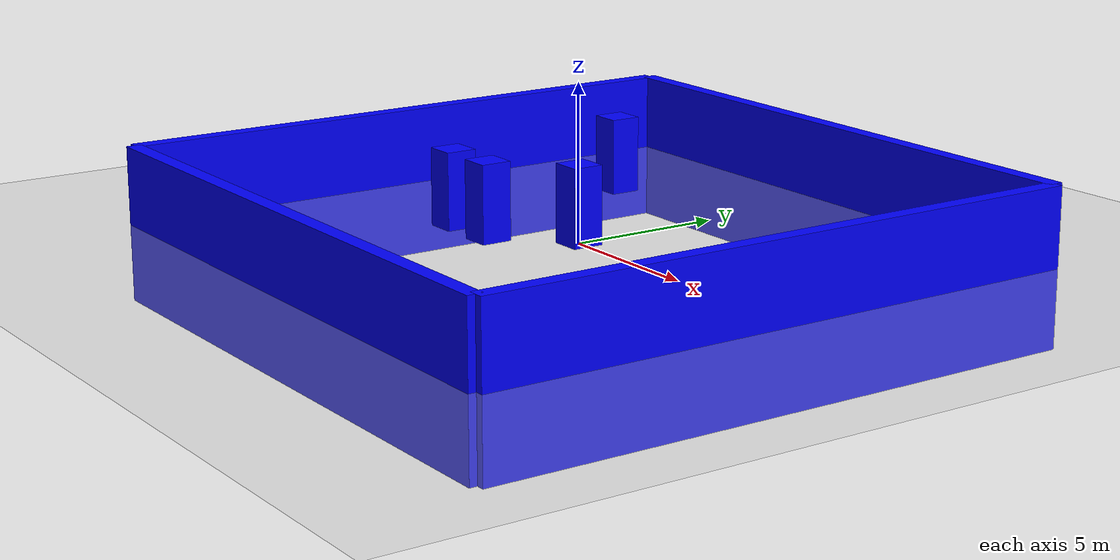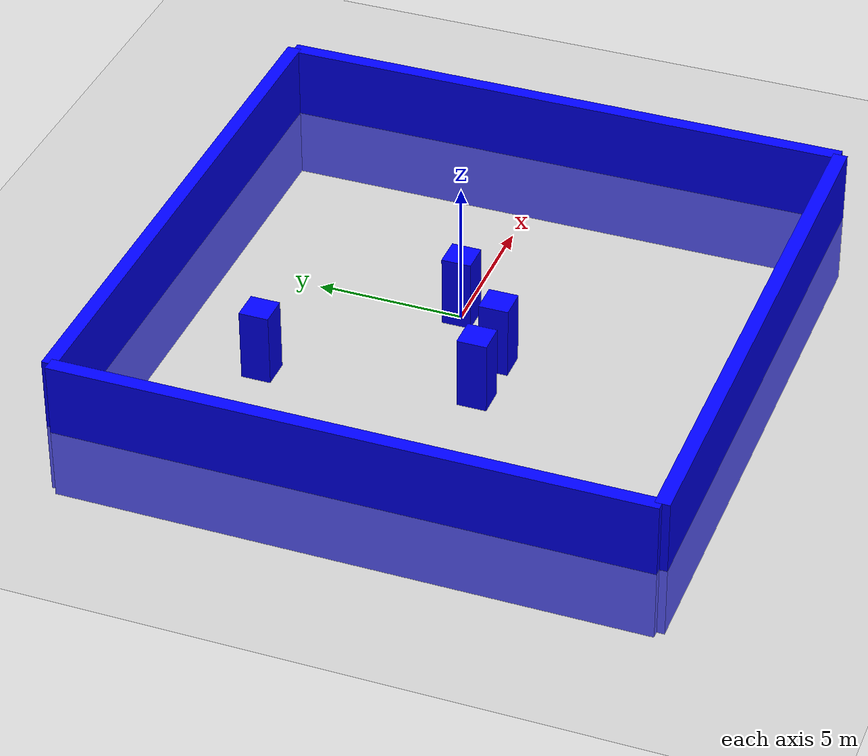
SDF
<?xml version="1.0" ?>
<sdf version="1.8">
    <world name="car_world">
        <physics name="1ms" type="ignored">
            <max_step_size>0.001</max_step_size>
            <real_time_factor>1.0</real_time_factor>
        </physics>
        <plugin
            filename="libignition-gazebo-physics-system.so"
            name="ignition::gazebo::systems::Physics">
        </plugin>
        <plugin
            filename="libignition-gazebo-user-commands-system.so"
            name="ignition::gazebo::systems::UserCommands">
        </plugin>
        <plugin
            filename="libignition-gazebo-scene-broadcaster-system.so"
            name="ignition::gazebo::systems::SceneBroadcaster">
        </plugin>

        <light type="directional" name="sun">
            <cast_shadows>true</cast_shadows>
            <pose>0 0 10 0 0 0</pose>
            <diffuse>0.8 0.8 0.8 1</diffuse>
            <specular>0.2 0.2 0.2 1</specular>
            <attenuation>
                <range>1000</range>
                <constant>0.9</constant>
                <linear>0.01</linear>
                <quadratic>0.001</quadratic>
            </attenuation>
            <direction>-0.5 0.1 -0.9</direction>
        </light>

        <model name="ground_plane">
            <static>true</static>
            <link name="link">
                <collision name="collision">
                <geometry>
                    <plane>
                    <normal>0 0 1</normal>
                    </plane>
                </geometry>
                </collision>
                <visual name="visual">
                <geometry>
                    <plane>
                    <normal>0 0 1</normal>
                    <size>30 30</size>
                    </plane>
                </geometry>
                <material>
                    <ambient>0.8 0.8 0.8 1</ambient>
                    <diffuse>0.8 0.8 0.8 1</diffuse>
                    <specular>0.8 0.8 0.8 1</specular>
                </material>
                </visual>
            </link>
        </model>

        <!-- Sensors -->
        <plugin
            filename="libignition-gazebo-contact-system.so"
            name="ignition::gazebo::systems::Contact">
        </plugin>

        <plugin
            filename="libignition-gazebo-imu-system.so"
            name="ignition::gazebo::systems::Imu">
        </plugin>

        <plugin filename="libignition-gazebo-sensors-system.so"
            name="ignition::gazebo::systems::Sensors">
            <render_engine>ogre2</render_engine>
        </plugin>

        <!-- Environment Model -->
        <model name="wall1">
            <static>true</static>
            <pose>10.0 0 0 0 0 0</pose> <!-- pose relative to the world -->

            <plugin filename="libignition-gazebo-touchplugin-system.so"
                name="ignition::gazebo::systems::TouchPlugin">
                <target>Jetracer</target>
                <namespace>wall</namespace>
                <time>0.001</time>
                <enabled>true</enabled>
            </plugin>
            <link name="box">
                <pose/>
                <sensor name='sensor_contact' type='contact'>
                    <contact>
                        <collision>collision</collision>
                    </contact>
                </sensor>
                <visual name="visual">
                    <geometry>
                        <box>
                            <size>0.5 20.0 5.0</size>
                        </box>
                    </geometry>
                    <material>
                        <ambient>0.0 0.0 1.0 1</ambient>
                        <diffuse>0.0 0.0 1.0 1</diffuse> <!-- Blue color -->
                        <specular>0.0 0.0 1.0 1</specular>
                    </material>
                </visual>
                <collision name="collision">
                    <geometry>
                        <box>
                            <size>0.5 20.0 5.0</size>
                        </box>
                    </geometry>
                </collision>
            </link>
        </model>

        <model name="wall2">
            <static>true</static>
            <pose>-10.0 0 0 0 0 0</pose> <!-- pose relative to the world -->

            <plugin filename="libignition-gazebo-touchplugin-system.so"
                name="ignition::gazebo::systems::TouchPlugin">
                <target>Jetracer</target>
                <namespace>wall</namespace>
                <time>0.001</time>
                <enabled>true</enabled>
            </plugin>
            <link name="box">
                <pose/>
                <sensor name='sensor_contact' type='contact'>
                    <contact>
                        <collision>collision</collision>
                    </contact>
                </sensor>
                <visual name="visual">
                    <geometry>
                        <box>
                            <size>0.5 20.0 5.0</size>
                        </box>
                    </geometry>
                    <material>
                        <ambient>0.0 0.0 1.0 1</ambient>
                        <diffuse>0.0 0.0 1.0 1</diffuse> <!-- Blue color -->
                        <specular>0.0 0.0 1.0 1</specular>
                    </material>
                </visual>
                <collision name="collision">
                    <geometry>
                        <box>
                            <size>0.5 20.0 5.0</size>
                        </box>
                    </geometry>
                </collision>
            </link>
        </model>

        <model name="wall3">
            <static>true</static>
            <pose>0.0 10.0 0 0 0 -1.57</pose> <!-- pose relative to the world -->

            <plugin filename="libignition-gazebo-touchplugin-system.so"
                name="ignition::gazebo::systems::TouchPlugin">
                <target>Jetracer</target>
                <namespace>wall</namespace>
                <time>0.001</time>
                <enabled>true</enabled>
            </plugin>
            <link name="box">
                <pose/>
                <sensor name='sensor_contact' type='contact'>
                    <contact>
                        <collision>collision</collision>
                    </contact>
                </sensor>
                <visual name="visual">
                    <geometry>
                        <box>
                            <size>0.5 20.0 5.0</size>
                        </box>
                    </geometry>
                    <material>
                        <ambient>0.0 0.0 1.0 1</ambient>
                        <diffuse>0.0 0.0 1.0 1</diffuse> <!-- Blue color -->
                        <specular>0.0 0.0 1.0 1</specular>
                    </material>
                </visual>
                <collision name="collision">
                    <geometry>
                        <box>
                            <size>0.5 20.0 5.0</size>
                        </box>
                    </geometry>
                </collision>
            </link>
        </model>

        <model name="wall4">
            <static>true</static>
            <pose>0.0 -10.0 0 0 0 -1.57</pose> <!-- pose relative to the world -->

            <plugin filename="libignition-gazebo-touchplugin-system.so"
                name="ignition::gazebo::systems::TouchPlugin">
                <target>Jetracer</target>
                <namespace>wall</namespace>
                <time>0.001</time>
                <enabled>true</enabled>
            </plugin>
            <link name="box">
                <pose/>
                <sensor name='sensor_contact' type='contact'>
                    <contact>
                        <collision>collision</collision>
                    </contact>
                </sensor>
                <visual name="visual">
                    <geometry>
                        <box>
                            <size>0.5 20.0 5.0</size>
                        </box>
                    </geometry>
                    <material>
                        <ambient>0.0 0.0 1.0 1</ambient>
                        <diffuse>0.0 0.0 1.0 1</diffuse> <!-- Blue color -->
                        <specular>0.0 0.0 1.0 1</specular>
                    </material>
                </visual>
                <collision name="collision">
                    <geometry>
                        <box>
                            <size>0.5 20.0 5.0</size>
                        </box>
                    </geometry>
                </collision>
            </link>
        </model>

        <model name="obs1">
            <static>true</static>
            <pose>0.0 0.0 1.25 0 0 0</pose> <!-- pose relative to the world -->

            <plugin filename="libignition-gazebo-touchplugin-system.so"
                name="ignition::gazebo::systems::TouchPlugin">
                <target>Jetracer</target>
                <namespace>wall</namespace>
                <time>0.001</time>
                <enabled>true</enabled>
            </plugin>
            <link name="box">
                <pose/>
                <sensor name='sensor_contact' type='contact'>
                    <contact>
                        <collision>collision</collision>
                    </contact>
                </sensor>
                <visual name="visual">
                    <geometry>
                        <box>
                            <size>1.0 1.0 2.5</size>
                        </box>
                    </geometry>
                    <material>
                        <ambient>0.0 0.0 1.0 1</ambient>
                        <diffuse>0.0 0.0 1.0 1</diffuse> <!-- Blue color -->
                        <specular>0.0 0.0 1.0 1</specular>
                    </material>
                </visual>
                <collision name="collision">
                    <geometry>
                        <box>
                            <size>1.0 1.0 2.5</size>
                        </box>
                    </geometry>
                </collision>
            </link>
        </model>

        <model name="obs2">
            <static>true</static>
            <pose>-5.0 5.0 1.25 0 0 0</pose> <!-- pose relative to the world -->

            <plugin filename="libignition-gazebo-touchplugin-system.so"
                name="ignition::gazebo::systems::TouchPlugin">
                <target>Jetracer</target>
                <namespace>wall</namespace>
                <time>0.001</time>
                <enabled>true</enabled>
            </plugin>
            <link name="box">
                <pose/>
                <sensor name='sensor_contact' type='contact'>
                    <contact>
                        <collision>collision</collision>
                    </contact>
                </sensor>
                <visual name="visual">
                    <geometry>
                        <box>
                            <size>1.0 1.0 2.5</size>
                        </box>
                    </geometry>
                    <material>
                        <ambient>0.0 0.0 1.0 1</ambient>
                        <diffuse>0.0 0.0 1.0 1</diffuse> <!-- Blue color -->
                        <specular>0.0 0.0 1.0 1</specular>
                    </material>
                </visual>
                <collision name="collision">
                    <geometry>
                        <box>
                            <size>1.0 1.0 2.5</size>
                        </box>
                    </geometry>
                </collision>
            </link>
        </model>

        <model name="obs3">
            <static>true</static>
            <pose>-4.0 -2.0 1.25 0 0 0</pose> <!-- pose relative to the world -->

            <plugin filename="libignition-gazebo-touchplugin-system.so"
                name="ignition::gazebo::systems::TouchPlugin">
                <target>Jetracer</target>
                <namespace>wall</namespace>
                <time>0.001</time>
                <enabled>true</enabled>
            </plugin>
            <link name="box">
                <pose/>
                <sensor name='sensor_contact' type='contact'>
                    <contact>
                        <collision>collision</collision>
                    </contact>
                </sensor>
                <visual name="visual">
                    <geometry>
                        <box>
                            <size>1.0 1.0 2.5</size>
                        </box>
                    </geometry>
                    <material>
                        <ambient>0.0 0.0 1.0 1</ambient>
                        <diffuse>0.0 0.0 1.0 1</diffuse> <!-- Blue color -->
                        <specular>0.0 0.0 1.0 1</specular>
                    </material>
                </visual>
                <collision name="collision">
                    <geometry>
                        <box>
                            <size>1.0 1.0 2.5</size>
                        </box>
                    </geometry>
                </collision>
            </link>
        </model>

        <model name="obs4">
            <static>true</static>
            <pose>-2.0 -2.0 1.25 0 0 0</pose> <!-- pose relative to the world -->

            <plugin filename="libignition-gazebo-touchplugin-system.so"
                name="ignition::gazebo::systems::TouchPlugin">
                <target>Jetracer</target>
                <namespace>wall</namespace>
                <time>0.001</time>
                <enabled>true</enabled>
            </plugin>
            <link name="box">
                <pose/>
                <sensor name='sensor_contact' type='contact'>
                    <contact>
                        <collision>collision</collision>
                    </contact>
                </sensor>
                <visual name="visual">
                    <geometry>
                        <box>
                            <size>1.0 1.0 2.5</size>
                        </box>
                    </geometry>
                    <material>
                        <ambient>0.0 0.0 1.0 1</ambient>
                        <diffuse>0.0 0.0 1.0 1</diffuse> <!-- Blue color -->
                        <specular>0.0 0.0 1.0 1</specular>
                    </material>
                </visual>
                <collision name="collision">
                    <geometry>
                        <box>
                            <size>1.0 1.0 2.5</size>
                        </box>
                    </geometry>
                </collision>
            </link>
        </model>

        <!-- Jetracer Model -->
        <model name='Jetracer' canonical_link='chassis'>
            <pose relative_to='world'>-8.0 0 0 0 0 0</pose>

            <frame name="lidar_frame" attached_to = "chassis">
                <pose>0.8 0 0.5 0 0 0</pose>
            </frame>

            <!-- Adding the chassis to the vehicle -->
            <link name='chassis'>
                <pose relative_to='__model__'>0 0 0.033 0 0 0</pose>

                <sensor name="imu_sensor" type="imu">
                    <always_on>1</always_on>
                    <update_rate>1</update_rate>
                    <visualize>true</visualize>
                    <topic>imu</topic>
                </sensor>

                <sensor name='gpu_lidar' type='gpu_lidar'>"
                    <pose relative_to='lidar_frame'>0 0 0 0 0 0</pose>
                    <topic>lidar</topic>
                    <update_rate>10</update_rate>
                    <ray>
                    <scan>
                        <horizontal>
                        <samples>640</samples>
                        <resolution>1</resolution>
                        <min_angle>-1.396263</min_angle>
                        <max_angle>1.396263</max_angle>
                        </horizontal>
                        <vertical>
                        <samples>1</samples>
                        <resolution>0.01</resolution>
                        <min_angle>0</min_angle>
                        <max_angle>0</max_angle>
                        </vertical>
                    </scan>
                    <range>
                        <min>0.08</min>
                        <max>10.0</max>
                        <resolution>0.01</resolution>
                    </range>
                    </ray>
                    <alwaysOn>1</alwaysOn>
                    <visualize>true</visualize>
                </sensor>

                <inertial>
                    <mass>1.189</mass>
                    <inertia>
                        <ixx>0.095329</ixx>
                        <ixy>0</ixy>
                        <ixz>0</ixz>
                        <iyy>0.381317</iyy>
                        <iyz>0</iyz>
                        <izz>0.476646</izz>
                    </inertia>
                </inertial>
                <collision name='collision'>
                    <geometry>
                        <box>
                            <size>0.23 0.122 0.02</size> <!-- Example dimensions for the chassis -->
                        </box>
                    </geometry>
                </collision>

                <visual name='visual'>
                    <geometry>
                        <box>
                            <size>0.23 0.122 0.02</size> <!-- Same dimensions as collision for simplicity -->
                        </box>
                    </geometry>
                    <material>
                        <ambient>0.0 1.0 0.0 1</ambient>
                        <diffuse>0.0 1.0 0.0 1</diffuse> <!-- Green color -->
                        <specular>0.0 1.0 0.0 1</specular>
                    </material>
                </visual>

            </link>

            <!-- Adding front right wheel to the vehicle -->
            <link name='front_right_wheel'>
                <pose relative_to='front_right_wheel_joint'>0 0 0 -1.5707 0 0</pose>

                <inertial>
                    <mass>1</mass>
                    <inertia>
                        <ixx>0.043333</ixx>
                        <ixy>0</ixy>
                        <ixz>0</ixz>
                        <iyy>0.043333</iyy>
                        <iyz>0</iyz>
                        <izz>0.08</izz>
                    </inertia>
                </inertial>

                <visual name='visual'>
                    <geometry>
                        <cylinder>
                            <radius>0.033</radius>
                            <length>0.026</length>
                        </cylinder>
                    </geometry>
                    <material>
                        <ambient>0.0 0.0 0.0 1</ambient>
                        <diffuse>0.0 0.0 0.0 1</diffuse> <!-- Black color -->
                        <specular>0.0 0.0 0.0 1</specular>
                    </material>
                </visual>

                <collision name='collision'>
                    <geometry>
                        <cylinder>
                            <radius>0.033</radius>
                            <length>0.026</length>
                        </cylinder>
                    </geometry>
                </collision>
            </link>

            <joint name='front_right_wheel_joint' type='revolute'>
                <pose relative_to='front_right_wheel_steering_joint'/>
                <parent>front_right_wheel_steering</parent>
                <child>front_right_wheel</child>

                <axis>
                    <xyz expressed_in='__model__'>0 1 0</xyz>
                    <limit>
                        <lower>-1.79769e+308</lower> <!-- negative infinity -->
                        <upper>1.79769e+308</upper> <!-- positive infinity -->
                    </limit>
                </axis>
            </joint>

            <link name="front_right_wheel_steering">
                <pose relative_to="front_right_wheel_steering_joint">0 0 0 0 0 0</pose>
                <inertial>
                    <mass>0.005</mass>
                    <inertia>
                        <ixx>0.0000018</ixx>
                        <iyy>0.0000018</iyy>
                        <izz>0.0000018</izz>
                    </inertia>
                </inertial>
            </link>

            <joint name="front_right_wheel_steering_joint" type="revolute">
                <parent>chassis</parent>
                <child>front_right_wheel_steering</child>
                <pose relative_to="chassis">0.064 -0.074 0 0 0 0</pose>
                <axis>
                    <xyz>0 0 1</xyz>
                    <limit>
                        <lower>-0.6</lower>
                        <upper>0.6</upper>
                        <velocity>1.0</velocity>
                        <effort>25</effort>
                    </limit>
                    <use_parent_model_frame>1</use_parent_model_frame>
                </axis>
            </joint>

            <!-- Adding front left wheel to the vehicle -->
            <link name='front_left_wheel'>
                <pose relative_to='front_left_wheel_joint'>0 0 0 -1.5707 0 0</pose>

                <inertial>
                    <mass>1</mass>
                    <inertia>
                        <ixx>0.043333</ixx>
                        <ixy>0</ixy>
                        <ixz>0</ixz>
                        <iyy>0.043333</iyy>
                        <iyz>0</iyz>
                        <izz>0.08</izz>
                    </inertia>
                </inertial>

                <visual name='visual'>
                    <geometry>
                        <cylinder>
                            <radius>0.033</radius>
                            <length>0.026</length>
                        </cylinder>
                    </geometry>
                    <material>
                        <ambient>0.0 0.0 0.0 1</ambient>
                        <diffuse>0.0 0.0 0.0 1</diffuse> <!-- Black color -->
                        <specular>0.0 0.0 0.0 1</specular>
                    </material>
                </visual>

                <collision name='collision'>
                    <geometry>
                        <cylinder>
                            <radius>0.033</radius>
                            <length>0.026</length>
                        </cylinder>
                    </geometry>
                </collision>
            </link>

            <joint name='front_left_wheel_joint' type='revolute'>
                <pose relative_to='front_left_wheel_steering_joint'/>
                <parent>front_left_wheel_steering</parent>
                <child>front_left_wheel</child>

                <axis>
                    <xyz expressed_in='__model__'>0 1 0</xyz>
                    <limit>
                        <lower>-1.79769e+308</lower> <!-- negative infinity -->
                        <upper>1.79769e+308</upper> <!-- positive infinity -->
                    </limit>
                </axis>
            </joint>

            <link name="front_left_wheel_steering">
                <pose relative_to="front_left_wheel_steering_joint">0 0 0 0 0 0</pose>
                <inertial>
                    <mass>0.005</mass>
                    <inertia>
                        <ixx>0.0000018</ixx>
                        <iyy>0.0000018</iyy>
                        <izz>0.0000018</izz>
                    </inertia>
                </inertial>
            </link>

            <joint name="front_left_wheel_steering_joint" type="revolute">
                <parent>chassis</parent>
                <child>front_left_wheel_steering</child>
                <pose relative_to="chassis">0.064 0.074 0 0 0 0</pose>
                <axis>
                    <xyz>0 0 1</xyz>
                    <limit>
                        <lower>-0.6</lower>
                        <upper>0.6</upper>
                        <velocity>1.0</velocity>
                        <effort>25</effort>
                    </limit>
                    <use_parent_model_frame>1</use_parent_model_frame>
                </axis>
            </joint>

            <!-- Adding back left wheel to the vehicle -->
            <link name='rear_left_wheel'>
                <pose relative_to='chassis'>-0.088 0.074 0 -1.5707 0 0</pose>

                <inertial>
                    <mass>1</mass>
                    <inertia>
                        <ixx>0.043333</ixx>
                        <ixy>0</ixy>
                        <ixz>0</ixz>
                        <iyy>0.043333</iyy>
                        <iyz>0</iyz>
                        <izz>0.08</izz>
                    </inertia>
                </inertial>

                <visual name='visual'>
                    <geometry>
                        <cylinder>
                            <radius>0.033</radius>
                            <length>0.026</length>
                        </cylinder>
                    </geometry>
                    <material>
                        <ambient>0.0 0.0 0.0 1</ambient>
                        <diffuse>0.0 0.0 0.0 1</diffuse> <!-- Black color -->
                        <specular>0.0 0.0 0.0 1</specular>
                    </material>
                </visual>

                <collision name='collision'>
                    <geometry>
                        <cylinder>
                            <radius>0.033</radius>
                            <length>0.026</length>
                        </cylinder>
                    </geometry>
                </collision>
            </link>

            <!-- Adding back right wheel to the vehicle -->
            <link name='rear_right_wheel'>
                <pose relative_to='chassis'>-0.088 -0.074 0 -1.5707 0 0</pose>

                <inertial>
                    <mass>1</mass>
                    <inertia>
                        <ixx>0.043333</ixx>
                        <ixy>0</ixy>
                        <ixz>0</ixz>
                        <iyy>0.043333</iyy>
                        <iyz>0</iyz>
                        <izz>0.08</izz>
                    </inertia>
                </inertial>

                <visual name='visual'>
                    <geometry>
                        <cylinder>
                            <radius>0.033</radius>
                            <length>0.026</length>
                        </cylinder>
                    </geometry>
                    <material>
                        <ambient>0.0 0.0 0.0 1</ambient>
                        <diffuse>0.0 0.0 0.0 1</diffuse> <!-- Black color -->
                        <specular>0.0 0.0 0.0 1</specular>
                    </material>
                </visual>

                <collision name='collision'>
                    <geometry>
                        <cylinder>
                            <radius>0.033</radius>
                            <length>0.026</length>
                        </cylinder>
                    </geometry>
                </collision>
            </link>

            <joint name='rear_left_wheel_joint' type='revolute'>
                <pose relative_to='rear_left_wheel'/>
                <parent>chassis</parent>
                <child>rear_left_wheel</child>

                <axis>
                    <xyz expressed_in='__model__'>0 1 0</xyz>
                    <limit>
                        <lower>-1.79769e+308</lower> <!-- negative infinity -->
                        <upper>1.79769e+308</upper> <!-- positive infinity -->
                    </limit>
                </axis>
            </joint>

            <joint name='rear_right_wheel_joint' type='revolute'>
                <pose relative_to='rear_right_wheel'/>
                <parent>chassis</parent>
                <child>rear_right_wheel</child>

                <axis>
                    <xyz expressed_in='__model__'>0 1 0</xyz>
                    <limit>
                        <lower>-1.79769e+308</lower> <!-- negative infinity -->
                        <upper>1.79769e+308</upper> <!-- positive infinity -->
                    </limit>
                </axis>
            </joint>

            <!-- Adding differential drive plugin to the vehicle -->
            <plugin
            filename="libignition-gazebo-diff-drive-system.so"
            name="ignition::gazebo::systems::DiffDrive">
                <left_joint>rear_left_wheel_joint</left_joint>
                <right_joint>rear_right_wheel_joint</right_joint>
                <wheel_separation>0.148</wheel_separation>
                <wheel_radius>0.033</wheel_radius>
                <odom_publish_frequency>1</odom_publish_frequency>
                <topic>cmd_vel</topic>
            </plugin>
        </model>

        <!-- Keyboard: moving forward -->
        <plugin
        filename="libignition-gazebo-triggered-publisher-system.so"
        name="ignition::gazebo::systems::TriggeredPublisher">
            <input type="ignition.msgs.Int32" topic="/keyboard/keypress">
                <match field="data">16777235</match>
            </input>
            <output type="ignition.msgs.Twist" topic="/cmd_vel">
                linear: {x: 0.5}, angular: {z: 0.0}
            </output>
        </plugin>

        <!-- Keyboard: moving backward -->
        <plugin
        filename="libignition-gazebo-triggered-publisher-system.so"
        name="ignition::gazebo::systems::TriggeredPublisher">
            <input type="ignition.msgs.Int32" topic="/keyboard/keypress">
                <match field="data">16777237</match>
            </input>
            <output type="ignition.msgs.Twist" topic="/cmd_vel">
                linear: {x: -0.5}, angular: {z: 0.0}
            </output>
        </plugin>

        <!-- Keyboard: turning left -->
        <plugin
        filename="libignition-gazebo-triggered-publisher-system.so"
        name="ignition::gazebo::systems::TriggeredPublisher">
            <input type="ignition.msgs.Int32" topic="/keyboard/keypress">
                <match field="data">16777234</match>
            </input>
            <output type="ignition.msgs.Twist" topic="/cmd_vel">
                linear: {x: 0.0}, angular: {z: 0.5}
            </output>
        </plugin>

        <!-- Keyboard: turning right -->
        <plugin
        filename="libignition-gazebo-triggered-publisher-system.so"
        name="ignition::gazebo::systems::TriggeredPublisher">
            <input type="ignition.msgs.Int32" topic="/keyboard/keypress">
                <match field="data">16777236</match>
            </input>
            <output type="ignition.msgs.Twist" topic="/cmd_vel">
                linear: {x: 0.0}, angular: {z: -0.5}
            </output>
        </plugin>

         <!-- Keyboard: stop -->
        <plugin
        filename="libignition-gazebo-triggered-publisher-system.so"
        name="ignition::gazebo::systems::TriggeredPublisher">
            <input type="ignition.msgs.Int32" topic="/keyboard/keypress">
                <match field="data">83</match>
            </input>
            <output type="ignition.msgs.Twist" topic="/cmd_vel">
                linear: {x: 0.0}, angular: {z: 0.0}
            </output>
        </plugin>

        <!--Collision Stop-->
        <plugin filename="libignition-gazebo-triggered-publisher-system.so"
            name="ignition::gazebo::systems::TriggeredPublisher">
            <input type="ignition.msgs.Boolean" topic="/wall/touched">
                <match>data: true</match>
            </input>
            <output type="ignition.msgs.Twist" topic="/cmd_vel">
                linear: {x: 0.0}, angular: {z: 0.0}
            </output>
        </plugin>

    </world>
</sdf>
